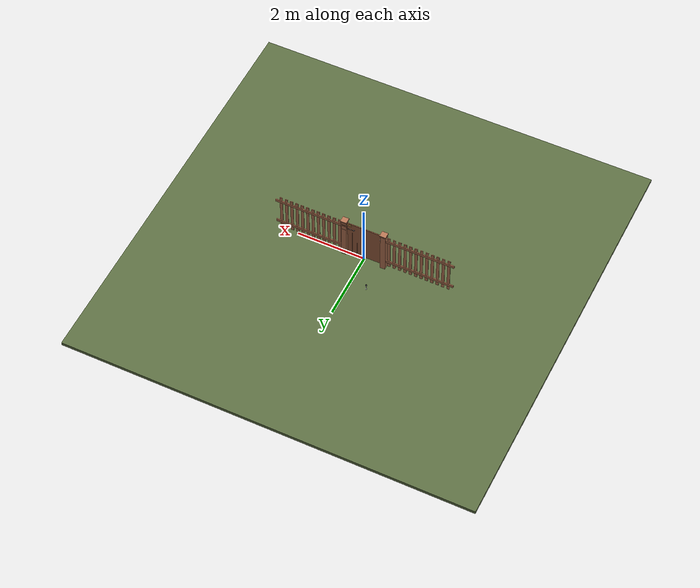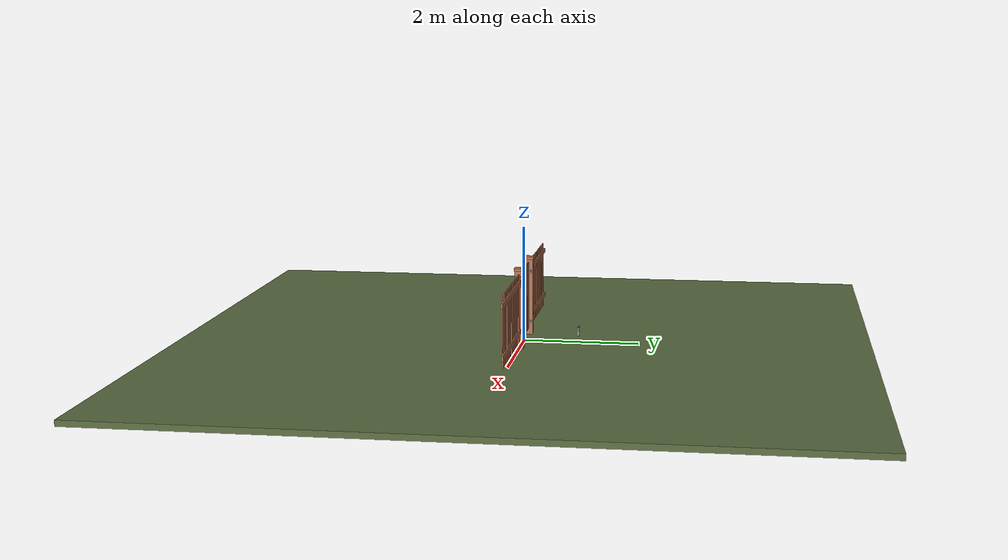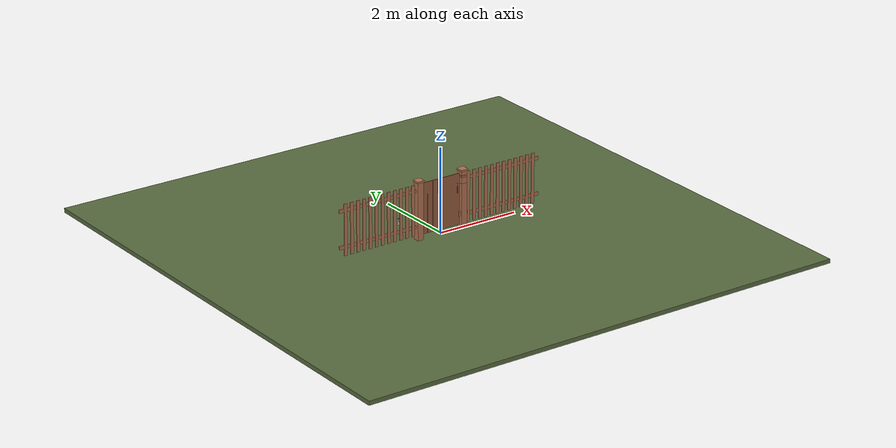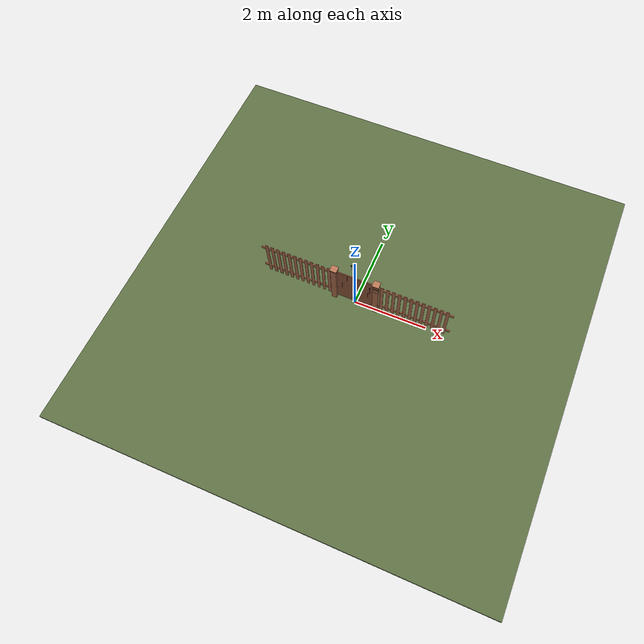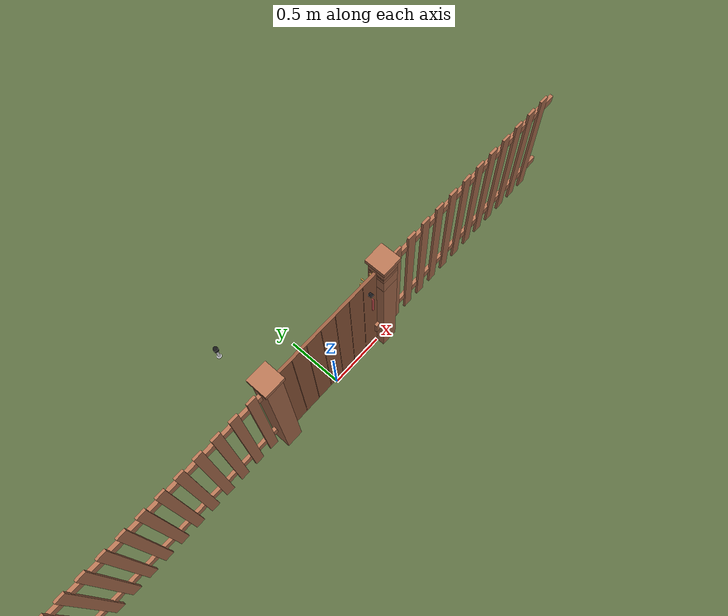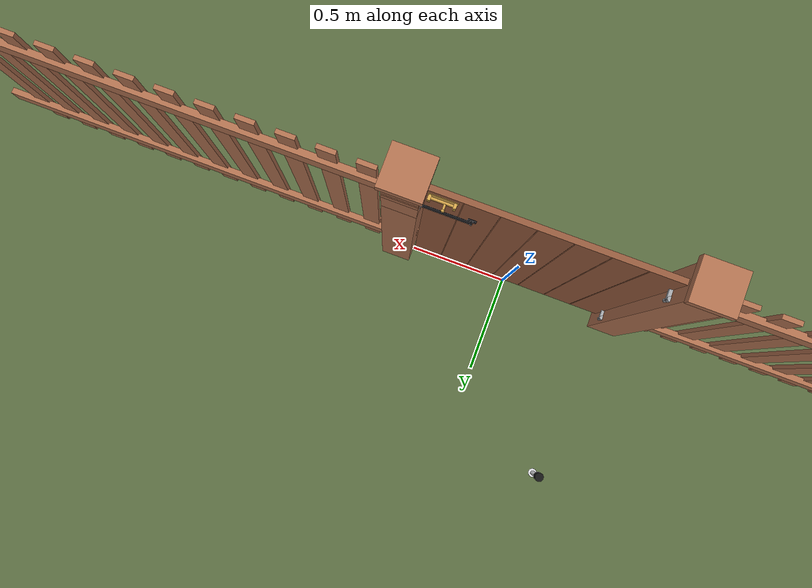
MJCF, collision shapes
<?xml version="1.0" ?>
<mujoco model="db0366_gate_swing_full">
  <compiler angle="radian" meshdir="../../hardware" texturedir="../../textures" autolimits="true" inertiafromgeom="false"/>
  <option timestep="0.002" integrator="implicitfast" cone="elliptic" impratio="10" noslip_iterations="3">
    <flag multiccd="enable"/>
  </option>
  <size memory="16M"/>
  <default>
    <geom condim="4" solref="0.005 1" solimp="0.95 0.99 0.001"/>
    <joint solreflimit="0.005 1" solimplimit="0.95 0.99 0.001"/>
    <tendon solreflimit="0.005 1"/>
    <equality solref="0.002 1"/>
  </default>
  <visual>
    <headlight ambient="0.4 0.4 0.4" diffuse="0.7 0.7 0.7" specular="0.2 0.2 0.2"/>
    <quality shadowsize="4096"/>
    <map znear="0.01" zfar="60"/>
  </visual>
  <asset>
    <mesh name="strap_hinge_78d1bbb966" file="strap_hinge_78d1bbb966.obj"/>
    <mesh name="thumb_latch_0073ea78ed" file="thumb_latch_0073ea78ed.obj"/>
    <material name="mat_floor" rgba="0.35 0.42 0.25 1" specular="0.2" shininess="0.15" reflectance="0"/>
    <material name="mat_wall" rgba="0.78 0.76 0.7 1" specular="0.2" shininess="0.1" reflectance="0"/>
    <material name="mat_leaf" rgba="0.588 0.359 0.242 1" specular="0.2" shininess="0.4" reflectance="0"/>
    <material name="mat_leaf_brace" rgba="0.529 0.323 0.218 1" specular="0.2" shininess="0.2" reflectance="0"/>
    <material name="mat_hinge" rgba="0.65 0.66 0.68 1" specular="0.74" shininess="0.5" reflectance="0.36"/>
    <material name="mat_op_wrought_iron" rgba="0.08 0.08 0.09 1" specular="0.56" shininess="0.25" reflectance="0.24"/>
    <material name="mat_op_brass" rgba="0.85 0.66 0.3 1" specular="0.8" shininess="0.75" reflectance="0.4"/>
    <material name="mat_frame" rgba="0.7 0.45 0.32 1" specular="0.2" shininess="0.4" reflectance="0"/>
    <material name="mat_bumper_stop" rgba="0.08 0.08 0.08 1" specular="0.2" shininess="0.1" reflectance="0"/>
    <material name="mat_stop_base" rgba="0.9 0.9 0.92 1" specular="0.8" shininess="0.9" reflectance="0.4"/>
    <material name="mat_fence" rgba="0.7 0.45 0.32 1" specular="0.2" shininess="0.4" reflectance="0"/>
    <texture name="skybox" type="skybox" builtin="gradient" rgb1="0.6 0.7 0.85" rgb2="0.9 0.92 0.95" width="256" height="256"/>
  </asset>
  <worldbody>
    <light name="sun" pos="1.5 -2.5 4" dir="-0.3 0.5 -0.8" directional="true" diffuse="0.8 0.8 0.8" specular="0.3 0.3 0.3" castshadow="true"/>
    <light name="fill" pos="-1.5 2.5 3" dir="0.3 -0.5 -0.7" directional="true" diffuse="0.35 0.35 0.4" castshadow="false"/>
    <camera name="robot_view" pos="0 -1.875 1.135" xyaxes="1 0 0 0 0.26963 0.962964" fovy="52"/>
    <camera name="far_view" pos="0 1.875 1.135" xyaxes="-1 0 0 0 -0.26963 0.962964" fovy="52"/>
    <camera name="iso" pos="1.425 -1.575 1.435" xyaxes="0.741536 0.670913 0 -0.242917 0.268487 0.932151" fovy="46"/>
    <camera name="detail_handle" pos="0.597 -0.8475 1.23" xyaxes="0.97561 0.219512 0 -0.070934 0.315262 0.94635" fovy="38"/>
    <geom name="floor" type="box" size="6 6 0.05" pos="0 0 -0.05" material="mat_floor" group="0" contype="1" conaffinity="1" friction="0.8 0.005 0.0001" density="2400"/>
    <geom name="hinge_pintle_0" type="cylinder" size="0.008 0.02" pos="-0.503 0.05 0.224" material="mat_hinge" group="1" contype="0" conaffinity="0" density="7850"/>
    <geom name="hinge_pintle_1" type="cylinder" size="0.008 0.02" pos="-0.503 0.05 1.124" material="mat_hinge" group="1" contype="0" conaffinity="0" density="7850"/>
    <geom name="leaf_latch_bar_keeper_b" type="box" size="0.015 0.0025 0.0005" pos="0.5055 0.0245 1.0625" quat="-0.5 -0.5 0.5 0.5" material="mat_op_wrought_iron" group="1" contype="0" conaffinity="0" density="7800"/>
    <geom name="leaf_latch_bar_keeper_l" type="box" size="0.0025 0.07 0.0005" pos="0.5055 0.037 1.135" quat="-0.5 -0.5 0.5 0.5" material="mat_op_wrought_iron" group="1" contype="0" conaffinity="0" density="7800"/>
    <geom name="leaf_latch_bar_keeper_t" type="box" size="0.015 0.0025 0.0005" pos="0.5055 0.0245 1.2075" quat="-0.5 -0.5 0.5 0.5" material="mat_op_wrought_iron" group="1" contype="0" conaffinity="0" density="7800"/>
    <geom name="leaf_latch_bar_keeper_r" type="box" size="0.0025 0.07 0.0005" pos="0.5055 0.012 1.135" quat="-0.5 -0.5 0.5 0.5" material="mat_op_wrought_iron" group="1" contype="0" conaffinity="0" density="7800"/>
    <geom name="leaf_aux_bolt_keeper_b" type="box" size="0.014 0.003 0.0005" pos="0.5055 0.0245 1.237" quat="-0.5 -0.5 0.5 0.5" material="mat_op_brass" group="1" contype="0" conaffinity="0" density="7800"/>
    <geom name="leaf_aux_bolt_keeper_l" type="box" size="0.003 0.01 0.0005" pos="0.5055 0.0355 1.25" quat="-0.5 -0.5 0.5 0.5" material="mat_op_brass" group="1" contype="0" conaffinity="0" density="7800"/>
    <geom name="leaf_aux_bolt_keeper_t" type="box" size="0.014 0.003 0.0005" pos="0.5055 0.0245 1.263" quat="-0.5 -0.5 0.5 0.5" material="mat_op_brass" group="1" contype="0" conaffinity="0" density="7800"/>
    <geom name="leaf_aux_bolt_keeper_r" type="box" size="0.003 0.01 0.0005" pos="0.5055 0.0135 1.25" quat="-0.5 -0.5 0.5 0.5" material="mat_op_brass" group="1" contype="0" conaffinity="0" density="7800"/>
    <geom name="post_hinge" type="box" size="0.075 0.075 0.675" pos="-0.581 0 0.675" material="mat_frame" group="0" contype="1" conaffinity="1" friction="0.6 0.005 0.0001" density="350"/>
    <geom name="post_hinge_cap" type="box" size="0.09 0.09 0.02" pos="-0.581 0 1.37" material="mat_frame" group="1" contype="0" conaffinity="0" density="350"/>
    <geom name="post_1135_wall_n" type="box" size="0.075 0.04475 0.07" pos="0.581 -0.03025 1.135" material="mat_frame" group="0" contype="1" conaffinity="1" friction="0.6 0.005 0.0001" density="350"/>
    <geom name="post_1135_wall_p" type="box" size="0.075 0.02025 0.07" pos="0.581 0.05475 1.135" material="mat_frame" group="0" contype="1" conaffinity="1" friction="0.6 0.005 0.0001" density="350"/>
    <geom name="post_1135_back" type="box" size="0.065 0.01 0.07" pos="0.591 0.0245 1.135" material="mat_frame" group="0" contype="1" conaffinity="1" friction="0.6 0.005 0.0001" density="350"/>
    <geom name="post_1250_wall_n" type="box" size="0.075 0.04575 0.01" pos="0.581 -0.02925 1.25" material="mat_frame" group="0" contype="1" conaffinity="1" friction="0.6 0.005 0.0001" density="350"/>
    <geom name="post_1250_wall_p" type="box" size="0.075 0.02125 0.01" pos="0.581 0.05375 1.25" material="mat_frame" group="0" contype="1" conaffinity="1" friction="0.6 0.005 0.0001" density="350"/>
    <geom name="post_1250_back" type="box" size="0.054 0.008 0.01" pos="0.602 0.0245 1.25" material="mat_frame" group="0" contype="1" conaffinity="1" friction="0.6 0.005 0.0001" density="350"/>
    <geom name="post_latch_0" type="box" size="0.075 0.075 0.5325" pos="0.581 0 0.5325" material="mat_frame" group="0" contype="1" conaffinity="1" friction="0.6 0.005 0.0001" density="350"/>
    <geom name="post_latch_1" type="box" size="0.075 0.075 0.0175" pos="0.581 0 1.2225" material="mat_frame" group="0" contype="1" conaffinity="1" friction="0.6 0.005 0.0001" density="350"/>
    <geom name="post_latch_2" type="box" size="0.075 0.075 0.045" pos="0.581 0 1.305" material="mat_frame" group="0" contype="1" conaffinity="1" friction="0.6 0.005 0.0001" density="350"/>
    <geom name="post_latch_cap" type="box" size="0.09 0.09 0.02" pos="0.581 0 1.37" material="mat_frame" group="1" contype="0" conaffinity="0" density="350"/>
    <geom name="gate_stop" type="box" size="0.02 0.012 0.06" pos="0.486 -0.0245 0.35" material="mat_frame" group="0" contype="1" conaffinity="1" friction="0.6 0.005 0.0001" density="350"/>
    <geom name="door_stop_base" type="cylinder" size="0.022 0.003" pos="-0.4895 0.9 0.003" material="mat_stop_base" group="0" contype="1" conaffinity="1" friction="0.6 0.005 0.0001" density="7850"/>
    <geom name="door_stop_post" type="cylinder" size="0.012 0.067" pos="-0.4895 0.9 0.073" material="mat_stop_base" group="0" contype="1" conaffinity="1" friction="0.6 0.005 0.0001" density="7850"/>
    <geom name="door_stop_bumper" type="cylinder" size="0.022 0.02" pos="-0.4895 0.9 0.16" material="mat_bumper_stop" group="0" contype="1" conaffinity="1" friction="0.6 0.005 0.0001" density="1100"/>
    <geom name="fence_picket_l_0" type="box" size="0.04 0.01 0.6" pos="-0.736 0 0.7" material="mat_fence" group="0" contype="1" conaffinity="1" friction="0.6 0.005 0.0001" density="400"/>
    <geom name="fence_picket_l_1" type="box" size="0.04 0.01 0.6" pos="-0.896 0 0.7" material="mat_fence" group="0" contype="1" conaffinity="1" friction="0.6 0.005 0.0001" density="400"/>
    <geom name="fence_picket_l_2" type="box" size="0.04 0.01 0.6" pos="-1.056 0 0.7" material="mat_fence" group="0" contype="1" conaffinity="1" friction="0.6 0.005 0.0001" density="400"/>
    <geom name="fence_picket_l_3" type="box" size="0.04 0.01 0.6" pos="-1.216 0 0.7" material="mat_fence" group="0" contype="1" conaffinity="1" friction="0.6 0.005 0.0001" density="400"/>
    <geom name="fence_picket_l_4" type="box" size="0.04 0.01 0.6" pos="-1.376 0 0.7" material="mat_fence" group="0" contype="1" conaffinity="1" friction="0.6 0.005 0.0001" density="400"/>
    <geom name="fence_picket_l_5" type="box" size="0.04 0.01 0.6" pos="-1.536 0 0.7" material="mat_fence" group="0" contype="1" conaffinity="1" friction="0.6 0.005 0.0001" density="400"/>
    <geom name="fence_picket_l_6" type="box" size="0.04 0.01 0.6" pos="-1.696 0 0.7" material="mat_fence" group="0" contype="1" conaffinity="1" friction="0.6 0.005 0.0001" density="400"/>
    <geom name="fence_picket_l_7" type="box" size="0.04 0.01 0.6" pos="-1.856 0 0.7" material="mat_fence" group="0" contype="1" conaffinity="1" friction="0.6 0.005 0.0001" density="400"/>
    <geom name="fence_picket_l_8" type="box" size="0.04 0.01 0.6" pos="-2.016 0 0.7" material="mat_fence" group="0" contype="1" conaffinity="1" friction="0.6 0.005 0.0001" density="400"/>
    <geom name="fence_picket_l_9" type="box" size="0.04 0.01 0.6" pos="-2.176 0 0.7" material="mat_fence" group="0" contype="1" conaffinity="1" friction="0.6 0.005 0.0001" density="400"/>
    <geom name="fence_picket_l_10" type="box" size="0.04 0.01 0.6" pos="-2.336 0 0.7" material="mat_fence" group="0" contype="1" conaffinity="1" friction="0.6 0.005 0.0001" density="400"/>
    <geom name="fence_picket_l_11" type="box" size="0.04 0.01 0.6" pos="-2.496 0 0.7" material="mat_fence" group="0" contype="1" conaffinity="1" friction="0.6 0.005 0.0001" density="400"/>
    <geom name="fence_rail_l" type="box" size="1 0.015 0.04" pos="-1.656 0.015 1.15" material="mat_fence" group="0" contype="1" conaffinity="1" friction="0.6 0.005 0.0001" density="400"/>
    <geom name="fence_rail_b_l" type="box" size="1 0.015 0.04" pos="-1.656 0.015 0.3" material="mat_fence" group="0" contype="1" conaffinity="1" friction="0.6 0.005 0.0001" density="400"/>
    <geom name="fence_picket_r_0" type="box" size="0.04 0.01 0.6" pos="0.736 0 0.7" material="mat_fence" group="0" contype="1" conaffinity="1" friction="0.6 0.005 0.0001" density="400"/>
    <geom name="fence_picket_r_1" type="box" size="0.04 0.01 0.6" pos="0.896 0 0.7" material="mat_fence" group="0" contype="1" conaffinity="1" friction="0.6 0.005 0.0001" density="400"/>
    <geom name="fence_picket_r_2" type="box" size="0.04 0.01 0.6" pos="1.056 0 0.7" material="mat_fence" group="0" contype="1" conaffinity="1" friction="0.6 0.005 0.0001" density="400"/>
    <geom name="fence_picket_r_3" type="box" size="0.04 0.01 0.6" pos="1.216 0 0.7" material="mat_fence" group="0" contype="1" conaffinity="1" friction="0.6 0.005 0.0001" density="400"/>
    <geom name="fence_picket_r_4" type="box" size="0.04 0.01 0.6" pos="1.376 0 0.7" material="mat_fence" group="0" contype="1" conaffinity="1" friction="0.6 0.005 0.0001" density="400"/>
    <geom name="fence_picket_r_5" type="box" size="0.04 0.01 0.6" pos="1.536 0 0.7" material="mat_fence" group="0" contype="1" conaffinity="1" friction="0.6 0.005 0.0001" density="400"/>
    <geom name="fence_picket_r_6" type="box" size="0.04 0.01 0.6" pos="1.696 0 0.7" material="mat_fence" group="0" contype="1" conaffinity="1" friction="0.6 0.005 0.0001" density="400"/>
    <geom name="fence_picket_r_7" type="box" size="0.04 0.01 0.6" pos="1.856 0 0.7" material="mat_fence" group="0" contype="1" conaffinity="1" friction="0.6 0.005 0.0001" density="400"/>
    <geom name="fence_picket_r_8" type="box" size="0.04 0.01 0.6" pos="2.016 0 0.7" material="mat_fence" group="0" contype="1" conaffinity="1" friction="0.6 0.005 0.0001" density="400"/>
    <geom name="fence_picket_r_9" type="box" size="0.04 0.01 0.6" pos="2.176 0 0.7" material="mat_fence" group="0" contype="1" conaffinity="1" friction="0.6 0.005 0.0001" density="400"/>
    <geom name="fence_picket_r_10" type="box" size="0.04 0.01 0.6" pos="2.336 0 0.7" material="mat_fence" group="0" contype="1" conaffinity="1" friction="0.6 0.005 0.0001" density="400"/>
    <geom name="fence_picket_r_11" type="box" size="0.04 0.01 0.6" pos="2.496 0 0.7" material="mat_fence" group="0" contype="1" conaffinity="1" friction="0.6 0.005 0.0001" density="400"/>
    <geom name="fence_rail_r" type="box" size="1 0.015 0.04" pos="1.656 0.015 1.15" material="mat_fence" group="0" contype="1" conaffinity="1" friction="0.6 0.005 0.0001" density="400"/>
    <geom name="fence_rail_b_r" type="box" size="1 0.015 0.04" pos="1.656 0.015 0.3" material="mat_fence" group="0" contype="1" conaffinity="1" friction="0.6 0.005 0.0001" density="400"/>
    <geom name="hinge_pintle_1_strap_0" type="box" size="0.073 0.0152 0.016" pos="-0.5835 0.0412 1.124" material="mat_hinge" group="1" contype="0" conaffinity="0" density="7850"/>
    <geom name="gate_stop_strap_0" type="box" size="0.0955 0.01405 0.048" pos="0.601 -0.02005 0.35" material="mat_frame" group="1" contype="0" conaffinity="0" density="7850"/>
    <site name="approach_point" pos="0 -1.5 0" quat="1 0 0 0" size="0.05" rgba="0.2 0.9 0.2 0.5" group="4"/>
    <site name="goal_point" pos="0 1.5 0" quat="1 0 0 0" size="0.05" rgba="0.2 0.9 0.2 0.5" group="4"/>
    <site name="door_plane_center" pos="0 0 0.61" quat="1 0 0 0" size="0.02" rgba="0.2 0.9 0.2 0.5" group="4"/>
    <body name="leaf" pos="-0.506 0 0">
      <inertial pos="0.475298 0.001363 0.721214" mass="12.368264" quat="0.558174 -0.565304 -0.42386 -0.434989" diaginertia="1.196051346 1.655672811 2.847709052"/>
      <joint name="leaf_hinge" type="hinge" axis="0 0 1" pos="0.003 0.05 0" limited="true" range="0 1.570796" damping="1.21672" frictionloss="6.687775" stiffness="5" springref="-1.738821" armature="0.02"/>
      <geom name="leaf_slab" type="box" size="0.5 0.0125 0.6" pos="0.503 0 0.7" material="mat_leaf" group="0" contype="1" conaffinity="1" friction="0.35 0.005 0.0001" density="1"/>
      <geom name="leaf_plank_gap_1" type="box" size="0.002 0.0135 0.59" pos="0.145857 0 0.7" material="mat_leaf_brace" group="1" contype="0" conaffinity="0" density="1"/>
      <geom name="leaf_plank_gap_2" type="box" size="0.002 0.0135 0.59" pos="0.288714 0 0.7" material="mat_leaf_brace" group="1" contype="0" conaffinity="0" density="1"/>
      <geom name="leaf_plank_gap_3" type="box" size="0.002 0.0135 0.59" pos="0.431571 0 0.7" material="mat_leaf_brace" group="1" contype="0" conaffinity="0" density="1"/>
      <geom name="leaf_plank_gap_4" type="box" size="0.002 0.0135 0.59" pos="0.574429 0 0.7" material="mat_leaf_brace" group="1" contype="0" conaffinity="0" density="1"/>
      <geom name="leaf_plank_gap_5" type="box" size="0.002 0.0135 0.59" pos="0.717286 0 0.7" material="mat_leaf_brace" group="1" contype="0" conaffinity="0" density="1"/>
      <geom name="leaf_plank_gap_6" type="box" size="0.002 0.0135 0.59" pos="0.860143 0 0.7" material="mat_leaf_brace" group="1" contype="0" conaffinity="0" density="1"/>
      <geom name="hinge_strap_0" type="mesh" mesh="strap_hinge_78d1bbb966" pos="0.003 0.0155 0.25" material="mat_hinge" group="1" contype="0" conaffinity="0" density="7850"/>
      <geom name="hinge_strap_eye_0" type="cylinder" size="0.011 0.012" pos="0.003 0.05 0.25" material="mat_hinge" group="1" contype="0" conaffinity="0" density="7850"/>
      <geom name="hinge_strap_neck_0" type="box" size="0.012 0.02125 0.006" pos="0.003 0.03275 0.25" material="mat_hinge" group="1" contype="0" conaffinity="0" density="7850"/>
      <geom name="hinge_strap_1" type="mesh" mesh="strap_hinge_78d1bbb966" pos="0.003 0.0155 1.15" material="mat_hinge" group="1" contype="0" conaffinity="0" density="7850"/>
      <geom name="hinge_strap_eye_1" type="cylinder" size="0.011 0.012" pos="0.003 0.05 1.15" material="mat_hinge" group="1" contype="0" conaffinity="0" density="7850"/>
      <geom name="hinge_strap_neck_1" type="box" size="0.012 0.02125 0.006" pos="0.003 0.03275 1.15" material="mat_hinge" group="1" contype="0" conaffinity="0" density="7850"/>
      <geom name="leaf_suffolk_grip" type="mesh" mesh="thumb_latch_0073ea78ed" pos="0.923 -0.0125 0.95" quat="0.707107 0.707107 0 0" material="mat_op_wrought_iron" group="1" contype="0" conaffinity="0" density="7000"/>
      <geom name="leaf_suffolk_grip_col" type="capsule" size="0.008 0.09" pos="0.923 -0.0475 0.95" material="mat_op_wrought_iron" group="3" contype="1" conaffinity="1" rgba="0.8 0.3 0.3 0.25" friction="0.7 0.01 0.0001" density="7000"/>
      <geom name="leaf_latch_bar_pivot" type="box" size="0.018 0.002 0.018" pos="0.803 0.0145 1.09" material="mat_op_wrought_iron" group="1" contype="0" conaffinity="0" density="7000"/>
      <geom name="leaf_latch_bar_pin" type="cylinder" size="0.005 0.01" pos="0.803 0.0225 1.09" quat="0.707107 -0.707107 0 0" material="mat_op_wrought_iron" group="1" contype="0" conaffinity="0" density="7000"/>
      <geom name="leaf_aux_bolt_plate" type="box" size="0.0595 0.019 0.001" pos="0.9355 0.0135 1.25" quat="0.707107 -0.707107 0 0" material="mat_op_brass" group="1" contype="0" conaffinity="0" density="7800"/>
      <geom name="leaf_aux_bolt_guide_0_leg_n" type="box" size="0.006 0.002 0.0125" pos="0.987 0.025 1.261" quat="0.707107 -0.707107 0 0" material="mat_op_brass" group="1" contype="0" conaffinity="0" density="7800"/>
      <geom name="leaf_aux_bolt_guide_0_leg_p" type="box" size="0.006 0.002 0.0125" pos="0.987 0.025 1.239" quat="0.707107 -0.707107 0 0" material="mat_op_brass" group="1" contype="0" conaffinity="0" density="7800"/>
      <geom name="leaf_aux_bolt_guide_0_bridge" type="box" size="0.006 0.013 0.002" pos="0.987 0.0355 1.25" quat="0.707107 -0.707107 0 0" material="mat_op_brass" group="1" contype="0" conaffinity="0" density="7800"/>
      <geom name="leaf_aux_bolt_guide_1_leg_n" type="box" size="0.006 0.002 0.0125" pos="0.886 0.025 1.261" quat="0.707107 -0.707107 0 0" material="mat_op_brass" group="1" contype="0" conaffinity="0" density="7800"/>
      <geom name="leaf_aux_bolt_guide_1_leg_p" type="box" size="0.006 0.002 0.0125" pos="0.886 0.025 1.239" quat="0.707107 -0.707107 0 0" material="mat_op_brass" group="1" contype="0" conaffinity="0" density="7800"/>
      <geom name="leaf_aux_bolt_guide_1_bridge" type="box" size="0.006 0.013 0.002" pos="0.886 0.0355 1.25" quat="0.707107 -0.707107 0 0" material="mat_op_brass" group="1" contype="0" conaffinity="0" density="7800"/>
      <site name="leaf_grip_n" pos="0.923 -0.0475 0.95" quat="1 0 0 0" size="0.012" rgba="0.2 0.9 0.2 0.5" group="4"/>
      <site name="leaf_edge_mid" pos="1.003 0 0.6" quat="1 0 0 0" size="0.02" rgba="0.2 0.9 0.2 0.5" group="4"/>
      <body name="leaf_thumb" pos="0.923 -0.0125 1.095">
        <inertial pos="0 -0.005933 -0.005008" mass="0.119952" quat="0.694063 -0.13519 -0.13519 -0.694063" diaginertia="0.000010452 0.000028338 0.000030045"/>
        <joint name="leaf_thumb_hinge" type="hinge" axis="1 0 0" limited="true" range="0 0.3" damping="0.155195" frictionloss="0.032" stiffness="0.6" springref="-0.5" armature="0.01"/>
        <geom name="leaf_thumb_geom" type="box" size="0.015 0.014 0.003" pos="0 -0.02 0" material="mat_op_wrought_iron" group="0" contype="1" conaffinity="1" friction="0.6 0.005 0.0001" density="7000"/>
        <geom name="leaf_thumb_boss" type="box" size="0.012 0.008 0.013" pos="0 -0.004 -0.005" material="mat_op_wrought_iron" group="1" contype="0" conaffinity="0" density="7000"/>
        <geom name="leaf_thumb_lifter" type="box" size="0.004 0.0165 0.004" pos="0 0.0185 -0.017" material="mat_op_wrought_iron" group="1" contype="0" conaffinity="0" density="7000"/>
        <site name="leaf_thumb_push" pos="0 -0.024 0.005" quat="1 0 0 0" size="0.01" rgba="0.2 0.9 0.2 0.5" group="4"/>
      </body>
      <body name="leaf_latch_bar" pos="0.803 0.0245 1.09">
        <inertial pos="0.106 0 0" mass="0.25" quat="0 0 0.707107 0.707107" diaginertia="0.000004465 0.000904065 0.000904065"/>
        <joint name="leaf_latch_bar_hinge" type="hinge" axis="0 -1 0" limited="true" range="0 0.6" damping="0.01" frictionloss="0.01" armature="0.005"/>
        <geom name="leaf_latch_bar_geom" type="capsule" size="0.006 0.1" pos="0.106 0 0" quat="0.707107 0 0.707107 0" material="mat_op_wrought_iron" group="0" contype="1" conaffinity="1" friction="0.6 0.005 0.0001" density="7850"/>
      </body>
      <body name="leaf_aux_bolt" pos="1.003 0.0245 1.25">
        <inertial pos="-0.068563 0.00492 0" mass="0.111784" quat="0.998595 0 0 -0.05299" diaginertia="0.000012212 0.000071985 0.000082309"/>
        <joint name="leaf_aux_bolt_slide" type="slide" axis="-1 0 0" limited="true" range="0 0.045" damping="1" frictionloss="1" armature="0.1" ref="0.045"/>
        <geom name="leaf_aux_bolt_rod" type="capsule" size="0.006 0.044" pos="-0.065 0 0" quat="0.707107 0 0.707107 0" material="mat_op_brass" group="0" contype="1" conaffinity="1" friction="0.6 0.005 0.0001" density="7850"/>
        <geom name="leaf_aux_bolt_knob" type="capsule" size="0.005 0.01" pos="-0.08 0.015 0" quat="0.707107 -0.707107 0 0" material="mat_op_brass" group="0" contype="1" conaffinity="1" friction="0.6 0.005 0.0001" density="7850"/>
        <geom name="leaf_aux_bolt_knob_end" type="sphere" size="0.00675" pos="-0.08 0.03 0" material="mat_op_brass" group="1" contype="0" conaffinity="0" density="7850"/>
        <site name="leaf_aux_bolt_grip" pos="-0.08 0.034 0" quat="1 0 0 0" size="0.012" rgba="0.2 0.9 0.2 0.5" group="4"/>
      </body>
    </body>
  </worldbody>
  <equality>
    <joint name="leaf_thumb_couple" joint1="leaf_latch_bar_hinge" joint2="leaf_thumb_hinge" polycoef="0 2 0 0 0" active="true"/>
  </equality>
  <sensor>
    <jointpos name="leaf_hinge_pos" joint="leaf_hinge"/>
    <jointvel name="leaf_hinge_vel" joint="leaf_hinge"/>
    <jointpos name="leaf_thumb_hinge_pos" joint="leaf_thumb_hinge"/>
    <jointvel name="leaf_thumb_hinge_vel" joint="leaf_thumb_hinge"/>
    <jointpos name="leaf_latch_bar_hinge_pos" joint="leaf_latch_bar_hinge"/>
    <jointvel name="leaf_latch_bar_hinge_vel" joint="leaf_latch_bar_hinge"/>
    <jointpos name="leaf_aux_bolt_slide_pos" joint="leaf_aux_bolt_slide"/>
    <jointvel name="leaf_aux_bolt_slide_vel" joint="leaf_aux_bolt_slide"/>
  </sensor>
</mujoco>
